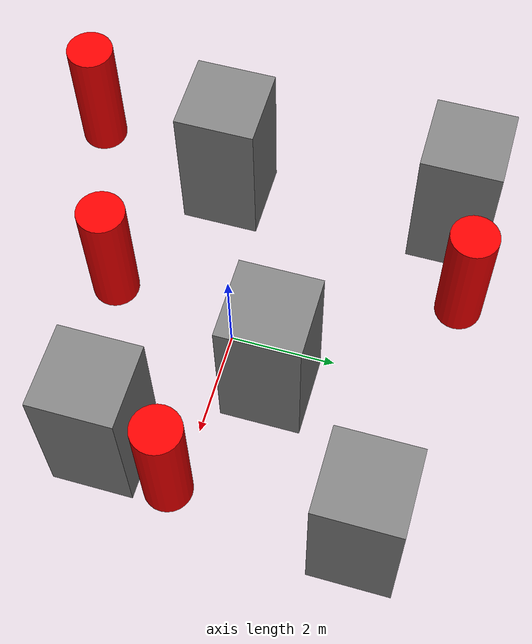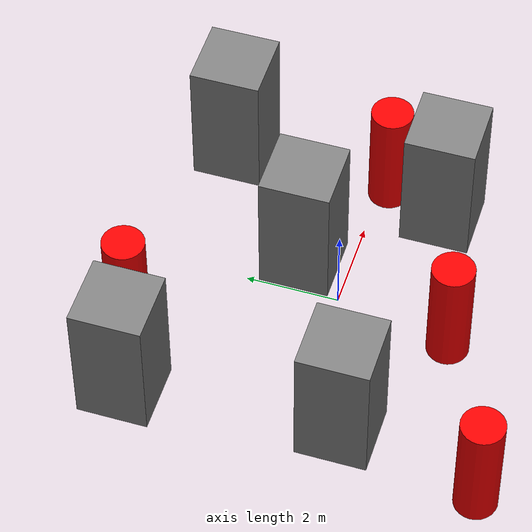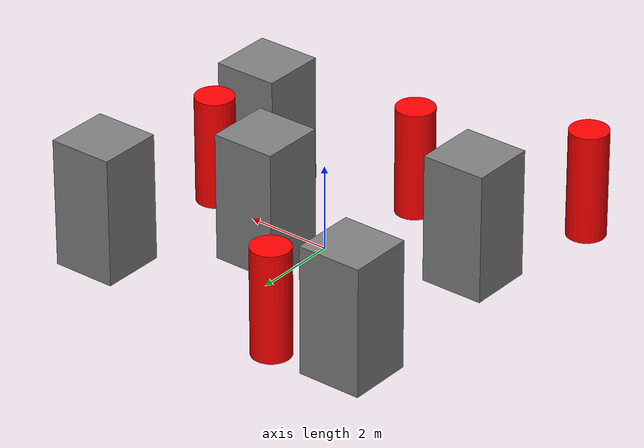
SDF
<sdf version='1.7'>
  <world name='default'>

    <!-- 场景说明: 10x10 地图 (X: [-5,5], Y: [-5,5])                -->
    <!-- 5 个静态方形障碍物 + 4 个动态圆柱障碍物                     -->
    <!-- 障碍物尺寸按原始参考大小 1.5 倍                             -->

    <!-- 1.5 倍尺寸 -->
    <!-- 动态圆柱: radius=0.45, length=2.55, z=1.275 -->
    <!-- 静态方块: size=1.5 1.5 3.0, z=1.5 -->

    <!-- 动态0: 沿 X 往返 (-4,-4) <-> (2,-4) -->
    <model name='dynamic_cylinder_0_0.9_0.9_2.55'>
      <static>true</static>
      <pose>-4.0 -4.0 1.275 0 0 0</pose>
      <link name='link'>
        <visual name='visual'>
          <geometry>
            <cylinder>
              <radius>0.45</radius>
              <length>2.55</length>
            </cylinder>
          </geometry>
          <material>
            <ambient>1 0 0 1</ambient>
            <diffuse>1 0 0 1</diffuse>
            <specular>0.5 0.5 0.5 1</specular>
          </material>
        </visual>
      </link>
      <plugin name="obstacle_motion" filename="libobstaclePathPlugin.so">
        <orientation>false</orientation>
        <loop>1</loop>
        <velocity>0.0</velocity>
        <path>
          <waypoint>-4.0 -4.0 1.275</waypoint>
          <waypoint>-4.0 -4.0 1.275</waypoint>
        </path>
      </plugin>
    </model>

    <!-- 动态1: 沿 Y 往返 (-0.5,-2.5) <-> (-0.5,3.0) -->
    <model name='dynamic_cylinder_1_0.9_0.9_2.55'>
      <static>true</static>
      <pose>-0.5 -2.5 1.275 0 0 0</pose>
      <link name='link'>
        <visual name='visual'>
          <geometry>
            <cylinder>
              <radius>0.45</radius>
              <length>2.55</length>
            </cylinder>
          </geometry>
          <material>
            <ambient>1 0 0 1</ambient>
            <diffuse>1 0 0 1</diffuse>
            <specular>0.5 0.5 0.5 1</specular>
          </material>
        </visual>
      </link>
      <plugin name="obstacle_motion" filename="libobstaclePathPlugin.so">
        <orientation>false</orientation>
        <loop>1</loop>
        <velocity>0.0</velocity>
        <path>
          <waypoint>-0.5 -2.5 1.275</waypoint>
          <waypoint>-0.5 -2.5 1.275</waypoint>
        </path>
      </plugin>
    </model>

    <!-- 动态2: 斜向往返 (3.2,-0.2) <-> (-2.0,2.8) -->
    <model name='dynamic_cylinder_2_0.9_0.9_2.55'>
      <static>true</static>
      <pose>3.2 -0.2 1.275 0 0 0</pose>
      <link name='link'>
        <visual name='visual'>
          <geometry>
            <cylinder>
              <radius>0.45</radius>
              <length>2.55</length>
            </cylinder>
          </geometry>
          <material>
            <ambient>1 0 0 1</ambient>
            <diffuse>1 0 0 1</diffuse>
            <specular>0.5 0.5 0.5 1</specular>
          </material>
        </visual>
      </link>
      <plugin name="obstacle_motion" filename="libobstaclePathPlugin.so">
        <orientation>false</orientation>
        <loop>1</loop>
        <velocity>0.0</velocity>
        <path>
          <waypoint>3.2 -0.2 1.275</waypoint>
          <waypoint>3.2 -0.2 1.275</waypoint>
        </path>
      </plugin>
    </model>

    <!-- 动态3: 沿 X 往返 (-1.8,4.0) <-> (3.5,4.0) -->
    <model name='dynamic_cylinder_3_0.9_0.9_2.55'>
      <static>true</static>
      <pose>-1.8 4.0 1.275 0 0 0</pose>
      <link name='link'>
        <visual name='visual'>
          <geometry>
            <cylinder>
              <radius>0.45</radius>
              <length>2.55</length>
            </cylinder>
          </geometry>
          <material>
            <ambient>1 0 0 1</ambient>
            <diffuse>1 0 0 1</diffuse>
            <specular>0.5 0.5 0.5 1</specular>
          </material>
        </visual>
      </link>
      <plugin name="obstacle_motion" filename="libobstaclePathPlugin.so">
        <orientation>false</orientation>
        <loop>1</loop>
        <velocity>0.0</velocity>
        <path>
          <waypoint>-1.8 4.0 1.275</waypoint>
          <waypoint>-1.8 4.0 1.275</waypoint>
        </path>
      </plugin>
    </model>

    <!-- 静态方形0: 左上 -->
    <model name='static_box_0'>
      <static>true</static>
      <pose>-3.5 3.5 1.5 0 0 0</pose>
      <link name='link'>
        <visual name='visual'>
          <geometry>
            <box>
              <size>1.5 1.5 3.0</size>
            </box>
          </geometry>
          <material>
            <ambient>0.5 0.5 0.5 1</ambient>
            <diffuse>0.5 0.5 0.5 1</diffuse>
            <specular>0.3 0.3 0.3 1</specular>
          </material>
        </visual>
        <collision name='collision'>
          <geometry>
            <box>
              <size>1.5 1.5 3.0</size>
            </box>
          </geometry>
        </collision>
      </link>
    </model>

    <!-- 静态方形1: 右上 -->
    <model name='static_box_1'>
      <static>true</static>
      <pose>3.3 3.3 1.5 0 0 0</pose>
      <link name='link'>
        <visual name='visual'>
          <geometry>
            <box>
              <size>1.5 1.5 3.0</size>
            </box>
          </geometry>
          <material>
            <ambient>0.5 0.5 0.5 1</ambient>
            <diffuse>0.5 0.5 0.5 1</diffuse>
            <specular>0.3 0.3 0.3 1</specular>
          </material>
        </visual>
        <collision name='collision'>
          <geometry>
            <box>
              <size>1.5 1.5 3.0</size>
            </box>
          </geometry>
        </collision>
      </link>
    </model>

    <!-- 静态方形2: 左下 -->
    <model name='static_box_2'>
      <static>true</static>
      <pose>-3.2 -1.0 1.5 0 0 0</pose>
      <link name='link'>
        <visual name='visual'>
          <geometry>
            <box>
              <size>1.5 1.5 3.0</size>
            </box>
          </geometry>
          <material>
            <ambient>0.5 0.5 0.5 1</ambient>
            <diffuse>0.5 0.5 0.5 1</diffuse>
            <specular>0.3 0.3 0.3 1</specular>
          </material>
        </visual>
        <collision name='collision'>
          <geometry>
            <box>
              <size>1.5 1.5 3.0</size>
            </box>
          </geometry>
        </collision>
      </link>
    </model>

    <!-- 静态方形3: 右下 -->
    <model name='static_box_3'>
      <static>true</static>
      <pose>2.8 -1.5 1.5 0 0 0</pose>
      <link name='link'>
        <visual name='visual'>
          <geometry>
            <box>
              <size>1.5 1.5 3.0</size>
            </box>
          </geometry>
          <material>
            <ambient>0.5 0.5 0.5 1</ambient>
            <diffuse>0.5 0.5 0.5 1</diffuse>
            <specular>0.3 0.3 0.3 1</specular>
          </material>
        </visual>
        <collision name='collision'>
          <geometry>
            <box>
              <size>1.5 1.5 3.0</size>
            </box>
          </geometry>
        </collision>
      </link>
    </model>

    <!-- 静态方形4: 中部偏右，不堵死通道 -->
    <model name='static_box_4'>
      <static>true</static>
      <pose>0.8 1.0 1.5 0 0 0</pose>
      <link name='link'>
        <visual name='visual'>
          <geometry>
            <box>
              <size>1.5 1.5 3.0</size>
            </box>
          </geometry>
          <material>
            <ambient>0.5 0.5 0.5 1</ambient>
            <diffuse>0.5 0.5 0.5 1</diffuse>
            <specular>0.3 0.3 0.3 1</specular>
          </material>
        </visual>
        <collision name='collision'>
          <geometry>
            <box>
              <size>1.5 1.5 3.0</size>
            </box>
          </geometry>
        </collision>
      </link>
    </model>

    <light name='sun' type='directional'>
      <cast_shadows>1</cast_shadows>
      <pose>0 0 10 0 -0 0</pose>
      <diffuse>0.8 0.8 0.8 1</diffuse>
      <specular>0.2 0.2 0.2 1</specular>
      <attenuation>
        <range>1000</range>
        <constant>0.9</constant>
        <linear>0.01</linear>
        <quadratic>0.001</quadratic>
      </attenuation>
      <direction>-0.5 0.1 -0.9</direction>
      <spot>
        <inner_angle>0</inner_angle>
        <outer_angle>0</outer_angle>
        <falloff>0</falloff>
      </spot>
    </light>

    <model name='ground_plane'>
      <static>1</static>
      <link name='link'>
        <collision name='collision'>
          <geometry>
            <plane>
              <normal>0 0 1</normal>
              <size>100 100</size>
            </plane>
          </geometry>
        </collision>
      </link>
    </model>

    <physics type='ode'>
      <max_step_size>0.001</max_step_size>
      <real_time_factor>1</real_time_factor>
      <real_time_update_rate>1000</real_time_update_rate>
    </physics>

    <scene>
      <ambient>0.4 0.4 0.4 1</ambient>
      <background>0.7 0.7 0.7 1</background>
      <shadows>1</shadows>
    </scene>

    <gui fullscreen='0'>
      <camera name='user_camera'>
        <pose>6.39292 -16.0551 24.6198 0 0.913797 2.1162</pose>
        <view_controller>orbit</view_controller>
        <projection_type>perspective</projection_type>
      </camera>
    </gui>
  </world>
</sdf>
